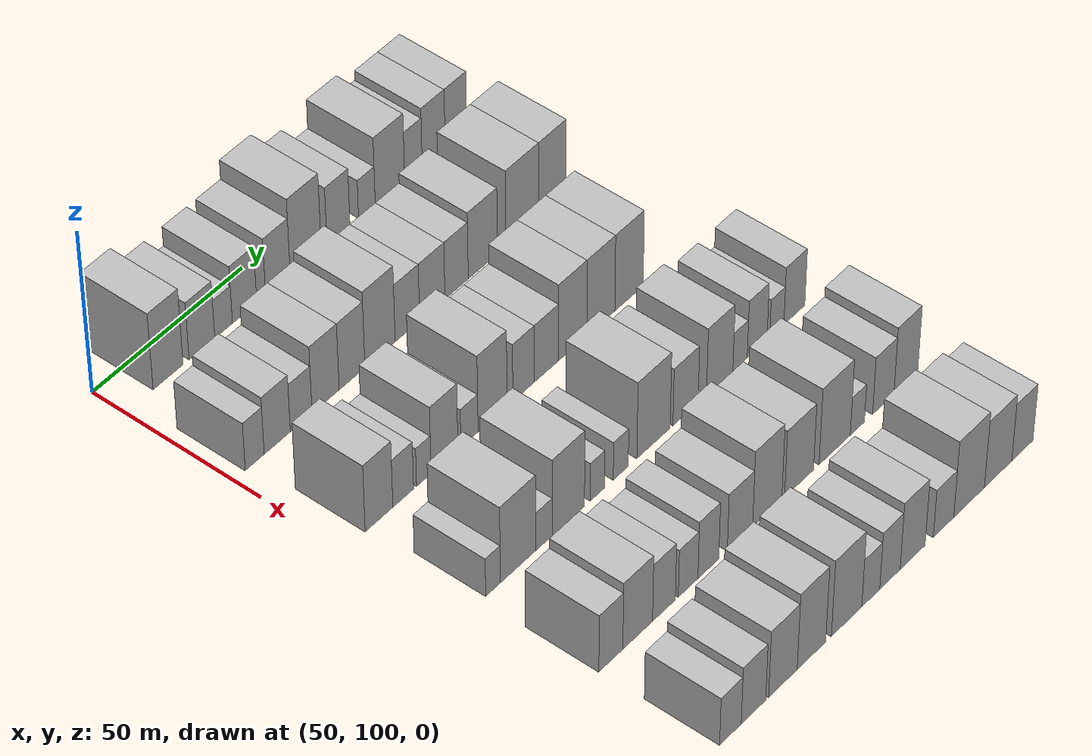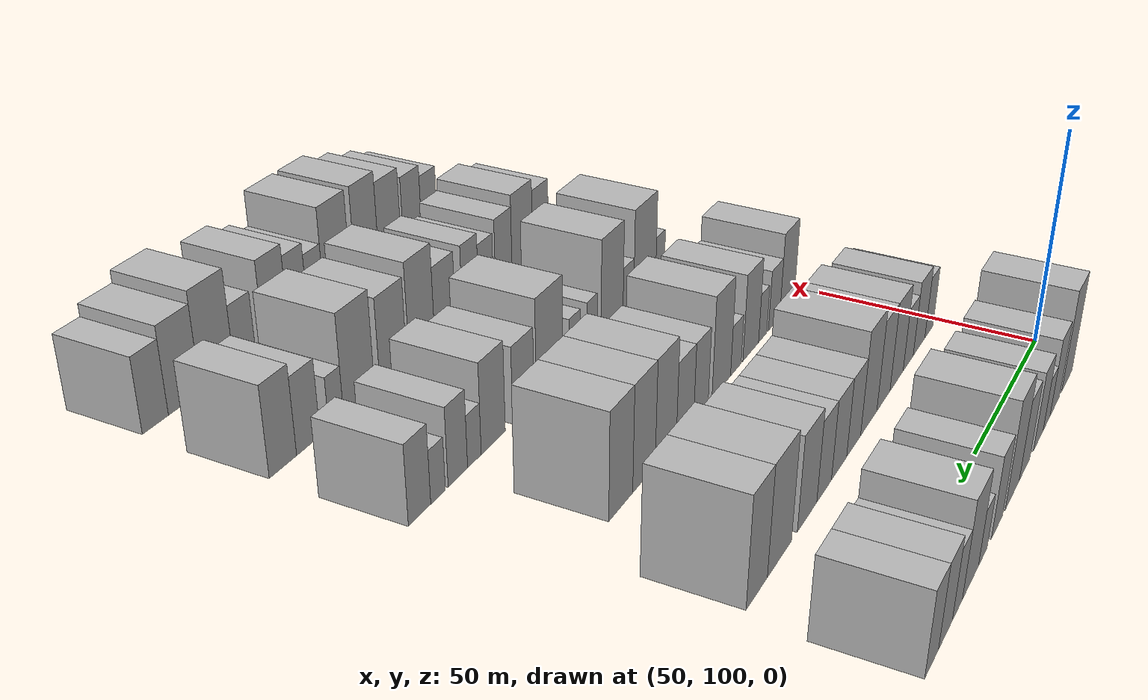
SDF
<sdf version="1.6">
 <world name="default">
  <model name="building_77">
   <static>1</static>
   <pose>50.0000 114.0105 0 0.000000 0.000000 0.000000</pose>
   <link name="link">
    <pose>0 0 12.00 0 0 0</pose>
    <collision name="collision"><geometry><box><size>20.0000 9.8989 24.0000</size></box></geometry></collision>
    <visual name="visual">
     <cast_shadows>0</cast_shadows>
     <geometry><box><size>20.0000 9.8989 24.0000</size></box></geometry>
     <material>
      <script>
       <uri>model://HANNAS_wall/materials/scripts</uri>
       <uri>model://HANNAS_wall/materials/textures</uri>
       <name>vrc/HANNAS_wall</name>
      </script>
     </material>
    </visual>
   </link>
  </model>
  <model name="building_78">
   <static>1</static>
   <pose>50.0000 125.2576 0 0.000000 0.000000 0.000000</pose>
   <link name="link">
    <pose>0 0 9.00 0 0 0</pose>
    <collision name="collision"><geometry><box><size>20.0000 8.5952 18.0000</size></box></geometry></collision>
    <visual name="visual">
     <cast_shadows>0</cast_shadows>
     <geometry><box><size>20.0000 8.5952 18.0000</size></box></geometry>
     <material>
      <script>
       <uri>model://HANNAS_wall/materials/scripts</uri>
       <uri>model://HANNAS_wall/materials/textures</uri>
       <name>vrc/HANNAS_wall</name>
      </script>
     </material>
    </visual>
   </link>
  </model>
  <model name="building_79">
   <static>1</static>
   <pose>50.0000 132.5205 0 0.000000 0.000000 0.000000</pose>
   <link name="link">
    <pose>0 0 6.00 0 0 0</pose>
    <collision name="collision"><geometry><box><size>20.0000 5.9307 12.0000</size></box></geometry></collision>
    <visual name="visual">
     <cast_shadows>0</cast_shadows>
     <geometry><box><size>20.0000 5.9307 12.0000</size></box></geometry>
     <material>
      <script>
       <uri>model://HANNAS_wall/materials/scripts</uri>
       <uri>model://HANNAS_wall/materials/textures</uri>
       <name>vrc/HANNAS_wall</name>
      </script>
     </material>
    </visual>
   </link>
  </model>
  <model name="building_80">
   <static>1</static>
   <pose>50.0000 139.6057 0 0.000000 0.000000 0.000000</pose>
   <link name="link">
    <pose>0 0 9.00 0 0 0</pose>
    <collision name="collision"><geometry><box><size>20.0000 8.2396 18.0000</size></box></geometry></collision>
    <visual name="visual">
     <cast_shadows>0</cast_shadows>
     <geometry><box><size>20.0000 8.2396 18.0000</size></box></geometry>
     <material>
      <script>
       <uri>model://HANNAS_wall/materials/scripts</uri>
       <uri>model://HANNAS_wall/materials/textures</uri>
       <name>vrc/HANNAS_wall</name>
      </script>
     </material>
    </visual>
   </link>
  </model>
  <model name="building_81">
   <static>1</static>
   <pose>50.0000 150.9297 0 0.000000 0.000000 0.000000</pose>
   <link name="link">
    <pose>0 0 9.00 0 0 0</pose>
    <collision name="collision"><geometry><box><size>20.0000 8.4083 18.0000</size></box></geometry></collision>
    <visual name="visual">
     <cast_shadows>0</cast_shadows>
     <geometry><box><size>20.0000 8.4083 18.0000</size></box></geometry>
     <material>
      <script>
       <uri>model://HANNAS_wall/materials/scripts</uri>
       <uri>model://HANNAS_wall/materials/textures</uri>
       <name>vrc/HANNAS_wall</name>
      </script>
     </material>
    </visual>
   </link>
  </model>
  <model name="building_82">
   <static>1</static>
   <pose>50.0000 160.4682 0 0.000000 0.000000 0.000000</pose>
   <link name="link">
    <pose>0 0 12.00 0 0 0</pose>
    <collision name="collision"><geometry><box><size>20.0000 10.6686 24.0000</size></box></geometry></collision>
    <visual name="visual">
     <cast_shadows>0</cast_shadows>
     <geometry><box><size>20.0000 10.6686 24.0000</size></box></geometry>
     <material>
      <script>
       <uri>model://HANNAS_wall/materials/scripts</uri>
       <uri>model://HANNAS_wall/materials/textures</uri>
       <name>vrc/HANNAS_wall</name>
      </script>
     </material>
    </visual>
   </link>
  </model>
  <model name="building_83">
   <static>1</static>
   <pose>50.0000 171.8150 0 0.000000 0.000000 0.000000</pose>
   <link name="link">
    <pose>0 0 9.00 0 0 0</pose>
    <collision name="collision"><geometry><box><size>20.0000 8.0251 18.0000</size></box></geometry></collision>
    <visual name="visual">
     <cast_shadows>0</cast_shadows>
     <geometry><box><size>20.0000 8.0251 18.0000</size></box></geometry>
     <material>
      <script>
       <uri>model://HANNAS_wall/materials/scripts</uri>
       <uri>model://HANNAS_wall/materials/textures</uri>
       <name>vrc/HANNAS_wall</name>
      </script>
     </material>
    </visual>
   </link>
  </model>
  <model name="building_84">
   <static>1</static>
   <pose>50.0000 181.7648 0 0.000000 0.000000 0.000000</pose>
   <link name="link">
    <pose>0 0 6.00 0 0 0</pose>
    <collision name="collision"><geometry><box><size>20.0000 5.8745 12.0000</size></box></geometry></collision>
    <visual name="visual">
     <cast_shadows>0</cast_shadows>
     <geometry><box><size>20.0000 5.8745 12.0000</size></box></geometry>
     <material>
      <script>
       <uri>model://HANNAS_wall/materials/scripts</uri>
       <uri>model://HANNAS_wall/materials/textures</uri>
       <name>vrc/HANNAS_wall</name>
      </script>
     </material>
    </visual>
   </link>
  </model>
  <model name="building_85">
   <static>1</static>
   <pose>50.0000 189.9107 0 0.000000 0.000000 0.000000</pose>
   <link name="link">
    <pose>0 0 10.50 0 0 0</pose>
    <collision name="collision"><geometry><box><size>20.0000 10.4174 21.0000</size></box></geometry></collision>
    <visual name="visual">
     <cast_shadows>0</cast_shadows>
     <geometry><box><size>20.0000 10.4174 21.0000</size></box></geometry>
     <material>
      <script>
       <uri>model://HANNAS_wall/materials/scripts</uri>
       <uri>model://HANNAS_wall/materials/textures</uri>
       <name>vrc/HANNAS_wall</name>
      </script>
     </material>
    </visual>
   </link>
  </model>
  <model name="building_86">
   <static>1</static>
   <pose>50.0000 198.2403 0 0.000000 0.000000 0.000000</pose>
   <link name="link">
    <pose>0 0 7.50 0 0 0</pose>
    <collision name="collision"><geometry><box><size>20.0000 6.2418 15.0000</size></box></geometry></collision>
    <visual name="visual">
     <cast_shadows>0</cast_shadows>
     <geometry><box><size>20.0000 6.2418 15.0000</size></box></geometry>
     <material>
      <script>
       <uri>model://HANNAS_wall/materials/scripts</uri>
       <uri>model://HANNAS_wall/materials/textures</uri>
       <name>vrc/HANNAS_wall</name>
      </script>
     </material>
    </visual>
   </link>
  </model>
  <model name="building_87">
   <static>1</static>
   <pose>50.0000 205.4761 0 0.000000 0.000000 0.000000</pose>
   <link name="link">
    <pose>0 0 9.00 0 0 0</pose>
    <collision name="collision"><geometry><box><size>20.0000 8.2298 18.0000</size></box></geometry></collision>
    <visual name="visual">
     <cast_shadows>0</cast_shadows>
     <geometry><box><size>20.0000 8.2298 18.0000</size></box></geometry>
     <material>
      <script>
       <uri>model://HANNAS_wall/materials/scripts</uri>
       <uri>model://HANNAS_wall/materials/textures</uri>
       <name>vrc/HANNAS_wall</name>
      </script>
     </material>
    </visual>
   </link>
  </model>
  <model name="building_88">
   <static>1</static>
   <pose>50.0000 213.5017 0 0.000000 0.000000 0.000000</pose>
   <link name="link">
    <pose>0 0 9.00 0 0 0</pose>
    <collision name="collision"><geometry><box><size>20.0000 7.8214 18.0000</size></box></geometry></collision>
    <visual name="visual">
     <cast_shadows>0</cast_shadows>
     <geometry><box><size>20.0000 7.8214 18.0000</size></box></geometry>
     <material>
      <script>
       <uri>model://HANNAS_wall/materials/scripts</uri>
       <uri>model://HANNAS_wall/materials/textures</uri>
       <name>vrc/HANNAS_wall</name>
      </script>
     </material>
    </visual>
   </link>
  </model>
  <model name="building_200">
   <static>1</static>
   <pose>82.0000 106.8260 0 0.000000 0.000000 0.000000</pose>
   <link name="link">
    <pose>0 0 7.50 0 0 0</pose>
    <collision name="collision"><geometry><box><size>20.0000 6.2624 15.0000</size></box></geometry></collision>
    <visual name="visual">
     <cast_shadows>0</cast_shadows>
     <geometry><box><size>20.0000 6.2624 15.0000</size></box></geometry>
     <material>
      <script>
       <uri>model://HANNAS_wall/materials/scripts</uri>
       <uri>model://HANNAS_wall/materials/textures</uri>
       <name>vrc/HANNAS_wall</name>
      </script>
     </material>
    </visual>
   </link>
  </model>
  <model name="building_201">
   <static>1</static>
   <pose>82.0000 114.2911 0 0.000000 0.000000 0.000000</pose>
   <link name="link">
    <pose>0 0 9.00 0 0 0</pose>
    <collision name="collision"><geometry><box><size>20.0000 8.6678 18.0000</size></box></geometry></collision>
    <visual name="visual">
     <cast_shadows>0</cast_shadows>
     <geometry><box><size>20.0000 8.6678 18.0000</size></box></geometry>
     <material>
      <script>
       <uri>model://HANNAS_wall/materials/scripts</uri>
       <uri>model://HANNAS_wall/materials/textures</uri>
       <name>vrc/HANNAS_wall</name>
      </script>
     </material>
    </visual>
   </link>
  </model>
  <model name="building_202">
   <static>1</static>
   <pose>82.0000 122.2558 0 0.000000 0.000000 0.000000</pose>
   <link name="link">
    <pose>0 0 7.50 0 0 0</pose>
    <collision name="collision"><geometry><box><size>20.0000 7.2616 15.0000</size></box></geometry></collision>
    <visual name="visual">
     <cast_shadows>0</cast_shadows>
     <geometry><box><size>20.0000 7.2616 15.0000</size></box></geometry>
     <material>
      <script>
       <uri>model://HANNAS_wall/materials/scripts</uri>
       <uri>model://HANNAS_wall/materials/textures</uri>
       <name>vrc/HANNAS_wall</name>
      </script>
     </material>
    </visual>
   </link>
  </model>
  <model name="building_203">
   <static>1</static>
   <pose>82.0000 130.4617 0 0.000000 0.000000 0.000000</pose>
   <link name="link">
    <pose>0 0 10.50 0 0 0</pose>
    <collision name="collision"><geometry><box><size>20.0000 9.1502 21.0000</size></box></geometry></collision>
    <visual name="visual">
     <cast_shadows>0</cast_shadows>
     <geometry><box><size>20.0000 9.1502 21.0000</size></box></geometry>
     <material>
      <script>
       <uri>model://HANNAS_wall/materials/scripts</uri>
       <uri>model://HANNAS_wall/materials/textures</uri>
       <name>vrc/HANNAS_wall</name>
      </script>
     </material>
    </visual>
   </link>
  </model>
  <model name="building_204">
   <static>1</static>
   <pose>82.0000 139.4067 0 0.000000 0.000000 0.000000</pose>
   <link name="link">
    <pose>0 0 10.50 0 0 0</pose>
    <collision name="collision"><geometry><box><size>20.0000 8.7397 21.0000</size></box></geometry></collision>
    <visual name="visual">
     <cast_shadows>0</cast_shadows>
     <geometry><box><size>20.0000 8.7397 21.0000</size></box></geometry>
     <material>
      <script>
       <uri>model://HANNAS_wall/materials/scripts</uri>
       <uri>model://HANNAS_wall/materials/textures</uri>
       <name>vrc/HANNAS_wall</name>
      </script>
     </material>
    </visual>
   </link>
  </model>
  <model name="building_205">
   <static>1</static>
   <pose>82.0000 148.9692 0 0.000000 0.000000 0.000000</pose>
   <link name="link">
    <pose>0 0 12.00 0 0 0</pose>
    <collision name="collision"><geometry><box><size>20.0000 10.3854 24.0000</size></box></geometry></collision>
    <visual name="visual">
     <cast_shadows>0</cast_shadows>
     <geometry><box><size>20.0000 10.3854 24.0000</size></box></geometry>
     <material>
      <script>
       <uri>model://HANNAS_wall/materials/scripts</uri>
       <uri>model://HANNAS_wall/materials/textures</uri>
       <name>vrc/HANNAS_wall</name>
      </script>
     </material>
    </visual>
   </link>
  </model>
  <model name="building_206">
   <static>1</static>
   <pose>82.0000 158.3852 0 0.000000 0.000000 0.000000</pose>
   <link name="link">
    <pose>0 0 9.00 0 0 0</pose>
    <collision name="collision"><geometry><box><size>20.0000 8.4464 18.0000</size></box></geometry></collision>
    <visual name="visual">
     <cast_shadows>0</cast_shadows>
     <geometry><box><size>20.0000 8.4464 18.0000</size></box></geometry>
     <material>
      <script>
       <uri>model://HANNAS_wall/materials/scripts</uri>
       <uri>model://HANNAS_wall/materials/textures</uri>
       <name>vrc/HANNAS_wall</name>
      </script>
     </material>
    </visual>
   </link>
  </model>
  <model name="building_207">
   <static>1</static>
   <pose>82.0000 167.0304 0 0.000000 0.000000 0.000000</pose>
   <link name="link">
    <pose>0 0 9.00 0 0 0</pose>
    <collision name="collision"><geometry><box><size>20.0000 8.8440 18.0000</size></box></geometry></collision>
    <visual name="visual">
     <cast_shadows>0</cast_shadows>
     <geometry><box><size>20.0000 8.8440 18.0000</size></box></geometry>
     <material>
      <script>
       <uri>model://HANNAS_wall/materials/scripts</uri>
       <uri>model://HANNAS_wall/materials/textures</uri>
       <name>vrc/HANNAS_wall</name>
      </script>
     </material>
    </visual>
   </link>
  </model>
  <model name="building_208">
   <static>1</static>
   <pose>82.0000 175.5449 0 0.000000 0.000000 0.000000</pose>
   <link name="link">
    <pose>0 0 9.00 0 0 0</pose>
    <collision name="collision"><geometry><box><size>20.0000 8.1852 18.0000</size></box></geometry></collision>
    <visual name="visual">
     <cast_shadows>0</cast_shadows>
     <geometry><box><size>20.0000 8.1852 18.0000</size></box></geometry>
     <material>
      <script>
       <uri>model://HANNAS_wall/materials/scripts</uri>
       <uri>model://HANNAS_wall/materials/textures</uri>
       <name>vrc/HANNAS_wall</name>
      </script>
     </material>
    </visual>
   </link>
  </model>
  <model name="building_209">
   <static>1</static>
   <pose>82.0000 184.8071 0 0.000000 0.000000 0.000000</pose>
   <link name="link">
    <pose>0 0 10.50 0 0 0</pose>
    <collision name="collision"><geometry><box><size>20.0000 10.3392 21.0000</size></box></geometry></collision>
    <visual name="visual">
     <cast_shadows>0</cast_shadows>
     <geometry><box><size>20.0000 10.3392 21.0000</size></box></geometry>
     <material>
      <script>
       <uri>model://HANNAS_wall/materials/scripts</uri>
       <uri>model://HANNAS_wall/materials/textures</uri>
       <name>vrc/HANNAS_wall</name>
      </script>
     </material>
    </visual>
   </link>
  </model>
  <model name="building_210">
   <static>1</static>
   <pose>82.0000 198.9016 0 0.000000 0.000000 0.000000</pose>
   <link name="link">
    <pose>0 0 12.00 0 0 0</pose>
    <collision name="collision"><geometry><box><size>20.0000 11.8497 24.0000</size></box></geometry></collision>
    <visual name="visual">
     <cast_shadows>0</cast_shadows>
     <geometry><box><size>20.0000 11.8497 24.0000</size></box></geometry>
     <material>
      <script>
       <uri>model://HANNAS_wall/materials/scripts</uri>
       <uri>model://HANNAS_wall/materials/textures</uri>
       <name>vrc/HANNAS_wall</name>
      </script>
     </material>
    </visual>
   </link>
  </model>
  <model name="building_211">
   <static>1</static>
   <pose>82.0000 209.7724 0 0.000000 0.000000 0.000000</pose>
   <link name="link">
    <pose>0 0 12.00 0 0 0</pose>
    <collision name="collision"><geometry><box><size>20.0000 9.8920 24.0000</size></box></geometry></collision>
    <visual name="visual">
     <cast_shadows>0</cast_shadows>
     <geometry><box><size>20.0000 9.8920 24.0000</size></box></geometry>
     <material>
      <script>
       <uri>model://HANNAS_wall/materials/scripts</uri>
       <uri>model://HANNAS_wall/materials/textures</uri>
       <name>vrc/HANNAS_wall</name>
      </script>
     </material>
    </visual>
   </link>
  </model>
  <model name="building_314">
   <static>1</static>
   <pose>114.0000 111.1921 0 0.000000 0.000000 0.000000</pose>
   <link name="link">
    <pose>0 0 10.50 0 0 0</pose>
    <collision name="collision"><geometry><box><size>20.0000 9.2102 21.0000</size></box></geometry></collision>
    <visual name="visual">
     <cast_shadows>0</cast_shadows>
     <geometry><box><size>20.0000 9.2102 21.0000</size></box></geometry>
     <material>
      <script>
       <uri>model://HANNAS_wall/materials/scripts</uri>
       <uri>model://HANNAS_wall/materials/textures</uri>
       <name>vrc/HANNAS_wall</name>
      </script>
     </material>
    </visual>
   </link>
  </model>
  <model name="building_315">
   <static>1</static>
   <pose>114.0000 119.2764 0 0.000000 0.000000 0.000000</pose>
   <link name="link">
    <pose>0 0 7.50 0 0 0</pose>
    <collision name="collision"><geometry><box><size>20.0000 6.9585 15.0000</size></box></geometry></collision>
    <visual name="visual">
     <cast_shadows>0</cast_shadows>
     <geometry><box><size>20.0000 6.9585 15.0000</size></box></geometry>
     <material>
      <script>
       <uri>model://HANNAS_wall/materials/scripts</uri>
       <uri>model://HANNAS_wall/materials/textures</uri>
       <name>vrc/HANNAS_wall</name>
      </script>
     </material>
    </visual>
   </link>
  </model>
  <model name="building_316">
   <static>1</static>
   <pose>114.0000 126.2109 0 0.000000 0.000000 0.000000</pose>
   <link name="link">
    <pose>0 0 6.00 0 0 0</pose>
    <collision name="collision"><geometry><box><size>20.0000 4.9106 12.0000</size></box></geometry></collision>
    <visual name="visual">
     <cast_shadows>0</cast_shadows>
     <geometry><box><size>20.0000 4.9106 12.0000</size></box></geometry>
     <material>
      <script>
       <uri>model://HANNAS_wall/materials/scripts</uri>
       <uri>model://HANNAS_wall/materials/textures</uri>
       <name>vrc/HANNAS_wall</name>
      </script>
     </material>
    </visual>
   </link>
  </model>
  <model name="building_317">
   <static>1</static>
   <pose>114.0000 133.2177 0 0.000000 0.000000 0.000000</pose>
   <link name="link">
    <pose>0 0 10.50 0 0 0</pose>
    <collision name="collision"><geometry><box><size>20.0000 9.1030 21.0000</size></box></geometry></collision>
    <visual name="visual">
     <cast_shadows>0</cast_shadows>
     <geometry><box><size>20.0000 9.1030 21.0000</size></box></geometry>
     <material>
      <script>
       <uri>model://HANNAS_wall/materials/scripts</uri>
       <uri>model://HANNAS_wall/materials/textures</uri>
       <name>vrc/HANNAS_wall</name>
      </script>
     </material>
    </visual>
   </link>
  </model>
  <model name="building_318">
   <static>1</static>
   <pose>114.0000 141.7190 0 0.000000 0.000000 0.000000</pose>
   <link name="link">
    <pose>0 0 6.00 0 0 0</pose>
    <collision name="collision"><geometry><box><size>20.0000 5.8997 12.0000</size></box></geometry></collision>
    <visual name="visual">
     <cast_shadows>0</cast_shadows>
     <geometry><box><size>20.0000 5.8997 12.0000</size></box></geometry>
     <material>
      <script>
       <uri>model://HANNAS_wall/materials/scripts</uri>
       <uri>model://HANNAS_wall/materials/textures</uri>
       <name>vrc/HANNAS_wall</name>
      </script>
     </material>
    </visual>
   </link>
  </model>
  <model name="building_319">
   <static>1</static>
   <pose>114.0000 149.6815 0 0.000000 0.000000 0.000000</pose>
   <link name="link">
    <pose>0 0 12.00 0 0 0</pose>
    <collision name="collision"><geometry><box><size>20.0000 10.0252 24.0000</size></box></geometry></collision>
    <visual name="visual">
     <cast_shadows>0</cast_shadows>
     <geometry><box><size>20.0000 10.0252 24.0000</size></box></geometry>
     <material>
      <script>
       <uri>model://HANNAS_wall/materials/scripts</uri>
       <uri>model://HANNAS_wall/materials/textures</uri>
       <name>vrc/HANNAS_wall</name>
      </script>
     </material>
    </visual>
   </link>
  </model>
  <model name="building_320">
   <static>1</static>
   <pose>114.0000 160.4238 0 0.000000 0.000000 0.000000</pose>
   <link name="link">
    <pose>0 0 9.00 0 0 0</pose>
    <collision name="collision"><geometry><box><size>20.0000 7.4594 18.0000</size></box></geometry></collision>
    <visual name="visual">
     <cast_shadows>0</cast_shadows>
     <geometry><box><size>20.0000 7.4594 18.0000</size></box></geometry>
     <material>
      <script>
       <uri>model://HANNAS_wall/materials/scripts</uri>
       <uri>model://HANNAS_wall/materials/textures</uri>
       <name>vrc/HANNAS_wall</name>
      </script>
     </material>
    </visual>
   </link>
  </model>
  <model name="building_321">
   <static>1</static>
   <pose>114.0000 168.4225 0 0.000000 0.000000 0.000000</pose>
   <link name="link">
    <pose>0 0 9.00 0 0 0</pose>
    <collision name="collision"><geometry><box><size>20.0000 8.5379 18.0000</size></box></geometry></collision>
    <visual name="visual">
     <cast_shadows>0</cast_shadows>
     <geometry><box><size>20.0000 8.5379 18.0000</size></box></geometry>
     <material>
      <script>
       <uri>model://HANNAS_wall/materials/scripts</uri>
       <uri>model://HANNAS_wall/materials/textures</uri>
       <name>vrc/HANNAS_wall</name>
      </script>
     </material>
    </visual>
   </link>
  </model>
  <model name="building_322">
   <static>1</static>
   <pose>114.0000 177.6753 0 0.000000 0.000000 0.000000</pose>
   <link name="link">
    <pose>0 0 12.00 0 0 0</pose>
    <collision name="collision"><geometry><box><size>20.0000 9.9677 24.0000</size></box></geometry></collision>
    <visual name="visual">
     <cast_shadows>0</cast_shadows>
     <geometry><box><size>20.0000 9.9677 24.0000</size></box></geometry>
     <material>
      <script>
       <uri>model://HANNAS_wall/materials/scripts</uri>
       <uri>model://HANNAS_wall/materials/textures</uri>
       <name>vrc/HANNAS_wall</name>
      </script>
     </material>
    </visual>
   </link>
  </model>
  <model name="building_323">
   <static>1</static>
   <pose>114.0000 187.6777 0 0.000000 0.000000 0.000000</pose>
   <link name="link">
    <pose>0 0 12.00 0 0 0</pose>
    <collision name="collision"><geometry><box><size>20.0000 10.0370 24.0000</size></box></geometry></collision>
    <visual name="visual">
     <cast_shadows>0</cast_shadows>
     <geometry><box><size>20.0000 10.0370 24.0000</size></box></geometry>
     <material>
      <script>
       <uri>model://HANNAS_wall/materials/scripts</uri>
       <uri>model://HANNAS_wall/materials/textures</uri>
       <name>vrc/HANNAS_wall</name>
      </script>
     </material>
    </visual>
   </link>
  </model>
  <model name="building_324">
   <static>1</static>
   <pose>114.0000 197.7884 0 0.000000 0.000000 0.000000</pose>
   <link name="link">
    <pose>0 0 12.00 0 0 0</pose>
    <collision name="collision"><geometry><box><size>20.0000 10.1844 24.0000</size></box></geometry></collision>
    <visual name="visual">
     <cast_shadows>0</cast_shadows>
     <geometry><box><size>20.0000 10.1844 24.0000</size></box></geometry>
     <material>
      <script>
       <uri>model://HANNAS_wall/materials/scripts</uri>
       <uri>model://HANNAS_wall/materials/textures</uri>
       <name>vrc/HANNAS_wall</name>
      </script>
     </material>
    </visual>
   </link>
  </model>
  <model name="building_436">
   <static>1</static>
   <pose>146.0000 111.2406 0 0.000000 0.000000 0.000000</pose>
   <link name="link">
    <pose>0 0 6.00 0 0 0</pose>
    <collision name="collision"><geometry><box><size>20.0000 4.9247 12.0000</size></box></geometry></collision>
    <visual name="visual">
     <cast_shadows>0</cast_shadows>
     <geometry><box><size>20.0000 4.9247 12.0000</size></box></geometry>
     <material>
      <script>
       <uri>model://HANNAS_wall/materials/scripts</uri>
       <uri>model://HANNAS_wall/materials/textures</uri>
       <name>vrc/HANNAS_wall</name>
      </script>
     </material>
    </visual>
   </link>
  </model>
  <model name="building_437">
   <static>1</static>
   <pose>146.0000 119.6589 0 0.000000 0.000000 0.000000</pose>
   <link name="link">
    <pose>0 0 12.00 0 0 0</pose>
    <collision name="collision"><geometry><box><size>20.0000 11.9120 24.0000</size></box></geometry></collision>
    <visual name="visual">
     <cast_shadows>0</cast_shadows>
     <geometry><box><size>20.0000 11.9120 24.0000</size></box></geometry>
     <material>
      <script>
       <uri>model://HANNAS_wall/materials/scripts</uri>
       <uri>model://HANNAS_wall/materials/textures</uri>
       <name>vrc/HANNAS_wall</name>
      </script>
     </material>
    </visual>
   </link>
  </model>
  <model name="building_438">
   <static>1</static>
   <pose>146.0000 128.4137 0 0.000000 0.000000 0.000000</pose>
   <link name="link">
    <pose>0 0 6.00 0 0 0</pose>
    <collision name="collision"><geometry><box><size>20.0000 5.5976 12.0000</size></box></geometry></collision>
    <visual name="visual">
     <cast_shadows>0</cast_shadows>
     <geometry><box><size>20.0000 5.5976 12.0000</size></box></geometry>
     <material>
      <script>
       <uri>model://HANNAS_wall/materials/scripts</uri>
       <uri>model://HANNAS_wall/materials/textures</uri>
       <name>vrc/HANNAS_wall</name>
      </script>
     </material>
    </visual>
   </link>
  </model>
  <model name="building_439">
   <static>1</static>
   <pose>146.0000 136.7526 0 0.000000 0.000000 0.000000</pose>
   <link name="link">
    <pose>0 0 12.00 0 0 0</pose>
    <collision name="collision"><geometry><box><size>20.0000 11.0802 24.0000</size></box></geometry></collision>
    <visual name="visual">
     <cast_shadows>0</cast_shadows>
     <geometry><box><size>20.0000 11.0802 24.0000</size></box></geometry>
     <material>
      <script>
       <uri>model://HANNAS_wall/materials/scripts</uri>
       <uri>model://HANNAS_wall/materials/textures</uri>
       <name>vrc/HANNAS_wall</name>
      </script>
     </material>
    </visual>
   </link>
  </model>
  <model name="building_440">
   <static>1</static>
   <pose>146.0000 146.7722 0 0.000000 0.000000 0.000000</pose>
   <link name="link">
    <pose>0 0 6.00 0 0 0</pose>
    <collision name="collision"><geometry><box><size>20.0000 4.9589 12.0000</size></box></geometry></collision>
    <visual name="visual">
     <cast_shadows>0</cast_shadows>
     <geometry><box><size>20.0000 4.9589 12.0000</size></box></geometry>
     <material>
      <script>
       <uri>model://HANNAS_wall/materials/scripts</uri>
       <uri>model://HANNAS_wall/materials/textures</uri>
       <name>vrc/HANNAS_wall</name>
      </script>
     </material>
    </visual>
   </link>
  </model>
  <model name="building_441">
   <static>1</static>
   <pose>146.0000 154.8742 0 0.000000 0.000000 0.000000</pose>
   <link name="link">
    <pose>0 0 6.00 0 0 0</pose>
    <collision name="collision"><geometry><box><size>20.0000 5.2451 12.0000</size></box></geometry></collision>
    <visual name="visual">
     <cast_shadows>0</cast_shadows>
     <geometry><box><size>20.0000 5.2451 12.0000</size></box></geometry>
     <material>
      <script>
       <uri>model://HANNAS_wall/materials/scripts</uri>
       <uri>model://HANNAS_wall/materials/textures</uri>
       <name>vrc/HANNAS_wall</name>
      </script>
     </material>
    </visual>
   </link>
  </model>
  <model name="building_442">
   <static>1</static>
   <pose>146.0000 166.3583 0 0.000000 0.000000 0.000000</pose>
   <link name="link">
    <pose>0 0 12.00 0 0 0</pose>
    <collision name="collision"><geometry><box><size>20.0000 11.7232 24.0000</size></box></geometry></collision>
    <visual name="visual">
     <cast_shadows>0</cast_shadows>
     <geometry><box><size>20.0000 11.7232 24.0000</size></box></geometry>
     <material>
      <script>
       <uri>model://HANNAS_wall/materials/scripts</uri>
       <uri>model://HANNAS_wall/materials/textures</uri>
       <name>vrc/HANNAS_wall</name>
      </script>
     </material>
    </visual>
   </link>
  </model>
  <model name="building_443">
   <static>1</static>
   <pose>146.0000 177.7072 0 0.000000 0.000000 0.000000</pose>
   <link name="link">
    <pose>0 0 9.00 0 0 0</pose>
    <collision name="collision"><geometry><box><size>20.0000 8.9746 18.0000</size></box></geometry></collision>
    <visual name="visual">
     <cast_shadows>0</cast_shadows>
     <geometry><box><size>20.0000 8.9746 18.0000</size></box></geometry>
     <material>
      <script>
       <uri>model://HANNAS_wall/materials/scripts</uri>
       <uri>model://HANNAS_wall/materials/textures</uri>
       <name>vrc/HANNAS_wall</name>
      </script>
     </material>
    </visual>
   </link>
  </model>
  <model name="building_444">
   <static>1</static>
   <pose>146.0000 189.9544 0 0.000000 0.000000 0.000000</pose>
   <link name="link">
    <pose>0 0 10.50 0 0 0</pose>
    <collision name="collision"><geometry><box><size>20.0000 9.5197 21.0000</size></box></geometry></collision>
    <visual name="visual">
     <cast_shadows>0</cast_shadows>
     <geometry><box><size>20.0000 9.5197 21.0000</size></box></geometry>
     <material>
      <script>
       <uri>model://HANNAS_wall/materials/scripts</uri>
       <uri>model://HANNAS_wall/materials/textures</uri>
       <name>vrc/HANNAS_wall</name>
      </script>
     </material>
    </visual>
   </link>
  </model>
  <model name="building_445">
   <static>1</static>
   <pose>146.0000 197.3199 0 0.000000 0.000000 0.000000</pose>
   <link name="link">
    <pose>0 0 6.00 0 0 0</pose>
    <collision name="collision"><geometry><box><size>20.0000 5.2112 12.0000</size></box></geometry></collision>
    <visual name="visual">
     <cast_shadows>0</cast_shadows>
     <geometry><box><size>20.0000 5.2112 12.0000</size></box></geometry>
     <material>
      <script>
       <uri>model://HANNAS_wall/materials/scripts</uri>
       <uri>model://HANNAS_wall/materials/textures</uri>
       <name>vrc/HANNAS_wall</name>
      </script>
     </material>
    </visual>
   </link>
  </model>
  <model name="building_446">
   <static>1</static>
   <pose>146.0000 203.5324 0 0.000000 0.000000 0.000000</pose>
   <link name="link">
    <pose>0 0 9.00 0 0 0</pose>
    <collision name="collision"><geometry><box><size>20.0000 7.2139 18.0000</size></box></geometry></collision>
    <visual name="visual">
     <cast_shadows>0</cast_shadows>
     <geometry><box><size>20.0000 7.2139 18.0000</size></box></geometry>
     <material>
      <script>
       <uri>model://HANNAS_wall/materials/scripts</uri>
       <uri>model://HANNAS_wall/materials/textures</uri>
       <name>vrc/HANNAS_wall</name>
      </script>
     </material>
    </visual>
   </link>
  </model>
  <model name="building_447">
   <static>1</static>
   <pose>146.0000 210.7368 0 0.000000 0.000000 0.000000</pose>
   <link name="link">
    <pose>0 0 6.00 0 0 0</pose>
    <collision name="collision"><geometry><box><size>20.0000 5.1950 12.0000</size></box></geometry></collision>
    <visual name="visual">
     <cast_shadows>0</cast_shadows>
     <geometry><box><size>20.0000 5.1950 12.0000</size></box></geometry>
     <material>
      <script>
       <uri>model://HANNAS_wall/materials/scripts</uri>
       <uri>model://HANNAS_wall/materials/textures</uri>
       <name>vrc/HANNAS_wall</name>
      </script>
     </material>
    </visual>
   </link>
  </model>
  <model name="building_448">
   <static>1</static>
   <pose>146.0000 217.1970 0 0.000000 0.000000 0.000000</pose>
   <link name="link">
    <pose>0 0 9.00 0 0 0</pose>
    <collision name="collision"><geometry><box><size>20.0000 7.7254 18.0000</size></box></geometry></collision>
    <visual name="visual">
     <cast_shadows>0</cast_shadows>
     <geometry><box><size>20.0000 7.7254 18.0000</size></box></geometry>
     <material>
      <script>
       <uri>model://HANNAS_wall/materials/scripts</uri>
       <uri>model://HANNAS_wall/materials/textures</uri>
       <name>vrc/HANNAS_wall</name>
      </script>
     </material>
    </visual>
   </link>
  </model>
  <model name="building_554">
   <static>1</static>
   <pose>178.0000 111.6075 0 0.000000 0.000000 0.000000</pose>
   <link name="link">
    <pose>0 0 9.00 0 0 0</pose>
    <collision name="collision"><geometry><box><size>20.0000 8.0919 18.0000</size></box></geometry></collision>
    <visual name="visual">
     <cast_shadows>0</cast_shadows>
     <geometry><box><size>20.0000 8.0919 18.0000</size></box></geometry>
     <material>
      <script>
       <uri>model://HANNAS_wall/materials/scripts</uri>
       <uri>model://HANNAS_wall/materials/textures</uri>
       <name>vrc/HANNAS_wall</name>
      </script>
     </material>
    </visual>
   </link>
  </model>
  <model name="building_555">
   <static>1</static>
   <pose>178.0000 120.6913 0 0.000000 0.000000 0.000000</pose>
   <link name="link">
    <pose>0 0 10.50 0 0 0</pose>
    <collision name="collision"><geometry><box><size>20.0000 10.0755 21.0000</size></box></geometry></collision>
    <visual name="visual">
     <cast_shadows>0</cast_shadows>
     <geometry><box><size>20.0000 10.0755 21.0000</size></box></geometry>
     <material>
      <script>
       <uri>model://HANNAS_wall/materials/scripts</uri>
       <uri>model://HANNAS_wall/materials/textures</uri>
       <name>vrc/HANNAS_wall</name>
      </script>
     </material>
    </visual>
   </link>
  </model>
  <model name="building_556">
   <static>1</static>
   <pose>178.0000 129.6403 0 0.000000 0.000000 0.000000</pose>
   <link name="link">
    <pose>0 0 9.00 0 0 0</pose>
    <collision name="collision"><geometry><box><size>20.0000 7.8226 18.0000</size></box></geometry></collision>
    <visual name="visual">
     <cast_shadows>0</cast_shadows>
     <geometry><box><size>20.0000 7.8226 18.0000</size></box></geometry>
     <material>
      <script>
       <uri>model://HANNAS_wall/materials/scripts</uri>
       <uri>model://HANNAS_wall/materials/textures</uri>
       <name>vrc/HANNAS_wall</name>
      </script>
     </material>
    </visual>
   </link>
  </model>
  <model name="building_557">
   <static>1</static>
   <pose>178.0000 137.9418 0 0.000000 0.000000 0.000000</pose>
   <link name="link">
    <pose>0 0 7.50 0 0 0</pose>
    <collision name="collision"><geometry><box><size>20.0000 6.7803 15.0000</size></box></geometry></collision>
    <visual name="visual">
     <cast_shadows>0</cast_shadows>
     <geometry><box><size>20.0000 6.7803 15.0000</size></box></geometry>
     <material>
      <script>
       <uri>model://HANNAS_wall/materials/scripts</uri>
       <uri>model://HANNAS_wall/materials/textures</uri>
       <name>vrc/HANNAS_wall</name>
      </script>
     </material>
    </visual>
   </link>
  </model>
  <model name="building_558">
   <static>1</static>
   <pose>178.0000 144.9622 0 0.000000 0.000000 0.000000</pose>
   <link name="link">
    <pose>0 0 9.00 0 0 0</pose>
    <collision name="collision"><geometry><box><size>20.0000 7.2606 18.0000</size></box></geometry></collision>
    <visual name="visual">
     <cast_shadows>0</cast_shadows>
     <geometry><box><size>20.0000 7.2606 18.0000</size></box></geometry>
     <material>
      <script>
       <uri>model://HANNAS_wall/materials/scripts</uri>
       <uri>model://HANNAS_wall/materials/textures</uri>
       <name>vrc/HANNAS_wall</name>
      </script>
     </material>
    </visual>
   </link>
  </model>
  <model name="building_559">
   <static>1</static>
   <pose>178.0000 156.0307 0 0.000000 0.000000 0.000000</pose>
   <link name="link">
    <pose>0 0 9.00 0 0 0</pose>
    <collision name="collision"><geometry><box><size>20.0000 8.8764 18.0000</size></box></geometry></collision>
    <visual name="visual">
     <cast_shadows>0</cast_shadows>
     <geometry><box><size>20.0000 8.8764 18.0000</size></box></geometry>
     <material>
      <script>
       <uri>model://HANNAS_wall/materials/scripts</uri>
       <uri>model://HANNAS_wall/materials/textures</uri>
       <name>vrc/HANNAS_wall</name>
      </script>
     </material>
    </visual>
   </link>
  </model>
  <model name="building_560">
   <static>1</static>
   <pose>178.0000 165.6483 0 0.000000 0.000000 0.000000</pose>
   <link name="link">
    <pose>0 0 12.00 0 0 0</pose>
    <collision name="collision"><geometry><box><size>20.0000 10.3588 24.0000</size></box></geometry></collision>
    <visual name="visual">
     <cast_shadows>0</cast_shadows>
     <geometry><box><size>20.0000 10.3588 24.0000</size></box></geometry>
     <material>
      <script>
       <uri>model://HANNAS_wall/materials/scripts</uri>
       <uri>model://HANNAS_wall/materials/textures</uri>
       <name>vrc/HANNAS_wall</name>
      </script>
     </material>
    </visual>
   </link>
  </model>
  <model name="building_561">
   <static>1</static>
   <pose>178.0000 177.0177 0 0.000000 0.000000 0.000000</pose>
   <link name="link">
    <pose>0 0 10.50 0 0 0</pose>
    <collision name="collision"><geometry><box><size>20.0000 10.3800 21.0000</size></box></geometry></collision>
    <visual name="visual">
     <cast_shadows>0</cast_shadows>
     <geometry><box><size>20.0000 10.3800 21.0000</size></box></geometry>
     <material>
      <script>
       <uri>model://HANNAS_wall/materials/scripts</uri>
       <uri>model://HANNAS_wall/materials/textures</uri>
       <name>vrc/HANNAS_wall</name>
      </script>
     </material>
    </visual>
   </link>
  </model>
  <model name="building_562">
   <static>1</static>
   <pose>178.0000 189.8694 0 0.000000 0.000000 0.000000</pose>
   <link name="link">
    <pose>0 0 12.00 0 0 0</pose>
    <collision name="collision"><geometry><box><size>20.0000 11.3233 24.0000</size></box></geometry></collision>
    <visual name="visual">
     <cast_shadows>0</cast_shadows>
     <geometry><box><size>20.0000 11.3233 24.0000</size></box></geometry>
     <material>
      <script>
       <uri>model://HANNAS_wall/materials/scripts</uri>
       <uri>model://HANNAS_wall/materials/textures</uri>
       <name>vrc/HANNAS_wall</name>
      </script>
     </material>
    </visual>
   </link>
  </model>
  <model name="building_563">
   <static>1</static>
   <pose>178.0000 198.1264 0 0.000000 0.000000 0.000000</pose>
   <link name="link">
    <pose>0 0 6.00 0 0 0</pose>
    <collision name="collision"><geometry><box><size>20.0000 5.1908 12.0000</size></box></geometry></collision>
    <visual name="visual">
     <cast_shadows>0</cast_shadows>
     <geometry><box><size>20.0000 5.1908 12.0000</size></box></geometry>
     <material>
      <script>
       <uri>model://HANNAS_wall/materials/scripts</uri>
       <uri>model://HANNAS_wall/materials/textures</uri>
       <name>vrc/HANNAS_wall</name>
      </script>
     </material>
    </visual>
   </link>
  </model>
  <model name="building_564">
   <static>1</static>
   <pose>178.0000 207.6631 0 0.000000 0.000000 0.000000</pose>
   <link name="link">
    <pose>0 0 9.00 0 0 0</pose>
    <collision name="collision"><geometry><box><size>20.0000 7.8826 18.0000</size></box></geometry></collision>
    <visual name="visual">
     <cast_shadows>0</cast_shadows>
     <geometry><box><size>20.0000 7.8826 18.0000</size></box></geometry>
     <material>
      <script>
       <uri>model://HANNAS_wall/materials/scripts</uri>
       <uri>model://HANNAS_wall/materials/textures</uri>
       <name>vrc/HANNAS_wall</name>
      </script>
     </material>
    </visual>
   </link>
  </model>
  <model name="building_565">
   <static>1</static>
   <pose>178.0000 216.0151 0 0.000000 0.000000 0.000000</pose>
   <link name="link">
    <pose>0 0 10.50 0 0 0</pose>
    <collision name="collision"><geometry><box><size>20.0000 8.8214 21.0000</size></box></geometry></collision>
    <visual name="visual">
     <cast_shadows>0</cast_shadows>
     <geometry><box><size>20.0000 8.8214 21.0000</size></box></geometry>
     <material>
      <script>
       <uri>model://HANNAS_wall/materials/scripts</uri>
       <uri>model://HANNAS_wall/materials/textures</uri>
       <name>vrc/HANNAS_wall</name>
      </script>
     </material>
    </visual>
   </link>
  </model>
  <model name="building_670">
   <static>1</static>
   <pose>210.0000 111.5467 0 0.000000 0.000000 0.000000</pose>
   <link name="link">
    <pose>0 0 7.50 0 0 0</pose>
    <collision name="collision"><geometry><box><size>20.0000 7.3313 15.0000</size></box></geometry></collision>
    <visual name="visual">
     <cast_shadows>0</cast_shadows>
     <geometry><box><size>20.0000 7.3313 15.0000</size></box></geometry>
     <material>
      <script>
       <uri>model://HANNAS_wall/materials/scripts</uri>
       <uri>model://HANNAS_wall/materials/textures</uri>
       <name>vrc/HANNAS_wall</name>
      </script>
     </material>
    </visual>
   </link>
  </model>
  <model name="building_671">
   <static>1</static>
   <pose>210.0000 119.3849 0 0.000000 0.000000 0.000000</pose>
   <link name="link">
    <pose>0 0 9.00 0 0 0</pose>
    <collision name="collision"><geometry><box><size>20.0000 8.3449 18.0000</size></box></geometry></collision>
    <visual name="visual">
     <cast_shadows>0</cast_shadows>
     <geometry><box><size>20.0000 8.3449 18.0000</size></box></geometry>
     <material>
      <script>
       <uri>model://HANNAS_wall/materials/scripts</uri>
       <uri>model://HANNAS_wall/materials/textures</uri>
       <name>vrc/HANNAS_wall</name>
      </script>
     </material>
    </visual>
   </link>
  </model>
  <model name="building_672">
   <static>1</static>
   <pose>210.0000 129.4894 0 0.000000 0.000000 0.000000</pose>
   <link name="link">
    <pose>0 0 10.50 0 0 0</pose>
    <collision name="collision"><geometry><box><size>20.0000 9.8641 21.0000</size></box></geometry></collision>
    <visual name="visual">
     <cast_shadows>0</cast_shadows>
     <geometry><box><size>20.0000 9.8641 21.0000</size></box></geometry>
     <material>
      <script>
       <uri>model://HANNAS_wall/materials/scripts</uri>
       <uri>model://HANNAS_wall/materials/textures</uri>
       <name>vrc/HANNAS_wall</name>
      </script>
     </material>
    </visual>
   </link>
  </model>
  <model name="building_673">
   <static>1</static>
   <pose>210.0000 139.4026 0 0.000000 0.000000 0.000000</pose>
   <link name="link">
    <pose>0 0 12.00 0 0 0</pose>
    <collision name="collision"><geometry><box><size>20.0000 9.9623 24.0000</size></box></geometry></collision>
    <visual name="visual">
     <cast_shadows>0</cast_shadows>
     <geometry><box><size>20.0000 9.9623 24.0000</size></box></geometry>
     <material>
      <script>
       <uri>model://HANNAS_wall/materials/scripts</uri>
       <uri>model://HANNAS_wall/materials/textures</uri>
       <name>vrc/HANNAS_wall</name>
      </script>
     </material>
    </visual>
   </link>
  </model>
  <model name="building_674">
   <static>1</static>
   <pose>210.0000 151.7347 0 0.000000 0.000000 0.000000</pose>
   <link name="link">
    <pose>0 0 12.00 0 0 0</pose>
    <collision name="collision"><geometry><box><size>20.0000 10.7020 24.0000</size></box></geometry></collision>
    <visual name="visual">
     <cast_shadows>0</cast_shadows>
     <geometry><box><size>20.0000 10.7020 24.0000</size></box></geometry>
     <material>
      <script>
       <uri>model://HANNAS_wall/materials/scripts</uri>
       <uri>model://HANNAS_wall/materials/textures</uri>
       <name>vrc/HANNAS_wall</name>
      </script>
     </material>
    </visual>
   </link>
  </model>
  <model name="building_675">
   <static>1</static>
   <pose>210.0000 160.2848 0 0.000000 0.000000 0.000000</pose>
   <link name="link">
    <pose>0 0 7.50 0 0 0</pose>
    <collision name="collision"><geometry><box><size>20.0000 6.3981 15.0000</size></box></geometry></collision>
    <visual name="visual">
     <cast_shadows>0</cast_shadows>
     <geometry><box><size>20.0000 6.3981 15.0000</size></box></geometry>
     <material>
      <script>
       <uri>model://HANNAS_wall/materials/scripts</uri>
       <uri>model://HANNAS_wall/materials/textures</uri>
       <name>vrc/HANNAS_wall</name>
      </script>
     </material>
    </visual>
   </link>
  </model>
  <model name="building_676">
   <static>1</static>
   <pose>210.0000 167.1419 0 0.000000 0.000000 0.000000</pose>
   <link name="link">
    <pose>0 0 9.00 0 0 0</pose>
    <collision name="collision"><geometry><box><size>20.0000 7.3161 18.0000</size></box></geometry></collision>
    <visual name="visual">
     <cast_shadows>0</cast_shadows>
     <geometry><box><size>20.0000 7.3161 18.0000</size></box></geometry>
     <material>
      <script>
       <uri>model://HANNAS_wall/materials/scripts</uri>
       <uri>model://HANNAS_wall/materials/textures</uri>
       <name>vrc/HANNAS_wall</name>
      </script>
     </material>
    </visual>
   </link>
  </model>
  <model name="building_677">
   <static>1</static>
   <pose>210.0000 175.2962 0 0.000000 0.000000 0.000000</pose>
   <link name="link">
    <pose>0 0 10.50 0 0 0</pose>
    <collision name="collision"><geometry><box><size>20.0000 8.9926 21.0000</size></box></geometry></collision>
    <visual name="visual">
     <cast_shadows>0</cast_shadows>
     <geometry><box><size>20.0000 8.9926 21.0000</size></box></geometry>
     <material>
      <script>
       <uri>model://HANNAS_wall/materials/scripts</uri>
       <uri>model://HANNAS_wall/materials/textures</uri>
       <name>vrc/HANNAS_wall</name>
      </script>
     </material>
    </visual>
   </link>
  </model>
  <model name="building_678">
   <static>1</static>
   <pose>210.0000 186.5109 0 0.000000 0.000000 0.000000</pose>
   <link name="link">
    <pose>0 0 7.50 0 0 0</pose>
    <collision name="collision"><geometry><box><size>20.0000 7.4368 15.0000</size></box></geometry></collision>
    <visual name="visual">
     <cast_shadows>0</cast_shadows>
     <geometry><box><size>20.0000 7.4368 15.0000</size></box></geometry>
     <material>
      <script>
       <uri>model://HANNAS_wall/materials/scripts</uri>
       <uri>model://HANNAS_wall/materials/textures</uri>
       <name>vrc/HANNAS_wall</name>
      </script>
     </material>
    </visual>
   </link>
  </model>
  <model name="building_679">
   <static>1</static>
   <pose>210.0000 195.8685 0 0.000000 0.000000 0.000000</pose>
   <link name="link">
    <pose>0 0 12.00 0 0 0</pose>
    <collision name="collision"><geometry><box><size>20.0000 11.2784 24.0000</size></box></geometry></collision>
    <visual name="visual">
     <cast_shadows>0</cast_shadows>
     <geometry><box><size>20.0000 11.2784 24.0000</size></box></geometry>
     <material>
      <script>
       <uri>model://HANNAS_wall/materials/scripts</uri>
       <uri>model://HANNAS_wall/materials/textures</uri>
       <name>vrc/HANNAS_wall</name>
      </script>
     </material>
    </visual>
   </link>
  </model>
  <model name="building_680">
   <static>1</static>
   <pose>210.0000 206.5904 0 0.000000 0.000000 0.000000</pose>
   <link name="link">
    <pose>0 0 10.50 0 0 0</pose>
    <collision name="collision"><geometry><box><size>20.0000 10.1654 21.0000</size></box></geometry></collision>
    <visual name="visual">
     <cast_shadows>0</cast_shadows>
     <geometry><box><size>20.0000 10.1654 21.0000</size></box></geometry>
     <material>
      <script>
       <uri>model://HANNAS_wall/materials/scripts</uri>
       <uri>model://HANNAS_wall/materials/textures</uri>
       <name>vrc/HANNAS_wall</name>
      </script>
     </material>
    </visual>
   </link>
  </model>
  <model name="building_681">
   <static>1</static>
   <pose>210.0000 215.6435 0 0.000000 0.000000 0.000000</pose>
   <link name="link">
    <pose>0 0 9.00 0 0 0</pose>
    <collision name="collision"><geometry><box><size>20.0000 7.9408 18.0000</size></box></geometry></collision>
    <visual name="visual">
     <cast_shadows>0</cast_shadows>
     <geometry><box><size>20.0000 7.9408 18.0000</size></box></geometry>
     <material>
      <script>
       <uri>model://HANNAS_wall/materials/scripts</uri>
       <uri>model://HANNAS_wall/materials/textures</uri>
       <name>vrc/HANNAS_wall</name>
      </script>
     </material>
    </visual>
   </link>
  </model>
 </world>
</sdf>
